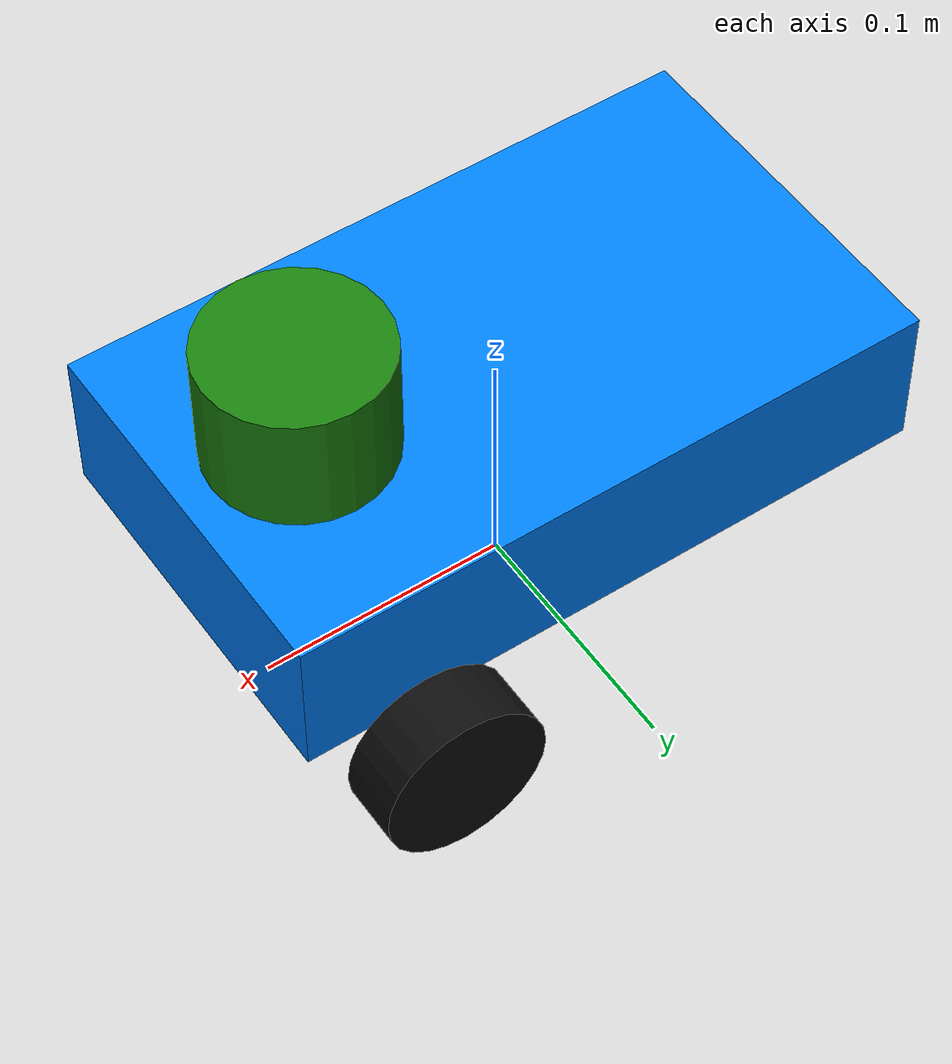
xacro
<?xml version="1.0"?>

<robot name="mobile_robot" xmlns:xacro="http://ros.org/wiki/xacro">
    <xacro:include filename="$(find odometry)/urdf/properties.xacro"/>

    <link name="base_footprint"></link>

    <joint name ="base_joint" type="fixed">
        <parent link="base_footprint"/>
        <child link="base_link"/>
        <origin xyz="0.0 0.0 0.055" rpy="0 0 0"/>
    </joint>

    <link name="base_link">
        <visual>
            <origin xyz="0 0 0.03" rpy="0.0 0.0 0.0" />
            <geometry>
                <box size="0.255 0.15 0.06"/>
            </geometry>
            <material name="blue">
                <color rgba="0.0 0.5 1 1"/>
            </material>
        </visual>
        <collision>
            <origin xyz="0 0 0.03" rpy="0.0 0.0 0.0" />
            <geometry>
                <box size="0.255 0.15 0.06"/>
            </geometry>
        </collision>
        <inertial>
            <mass value="1"/>
            <inertia ixx="0.008" ixy="0.0" ixz="0.0" iyy="0.02136" iyz="0.0" izz="0.0215"/>
        </inertial>
    </link>

    <joint name="caster_back_joint" type="fixed">
        <parent link="base_link"/>
        <child link="caster_back_link"/>
        <origin xyz="-0.08 0 0" rpy="0 0 0"/>
    </joint>

    <link name="caster_back_link">
        <visual name="caster">
            <origin xyz="0.0 0 -0.0275"/>
            <geometry>
                <sphere radius="0.0275"/>
            </geometry>
        </visual>
        <collision>
          <origin xyz="0 0 -0.0275" />
          <geometry>
            <sphere radius="0.0275"/>
          </geometry>
        </collision>

        <inertial>
          <origin xyz="0 0 0" />
          <mass value="0.005" />
          <inertia ixx="0.001" ixy="0.0" ixz="0.0"
                   iyy="0.001" iyz="0.0"
                   izz="0.001" />
        </inertial>
    </link>

    <joint name="joint_right_wheel" type="continuous">
        <parent link="base_link"/>
        <child link="right_wheel"/>
        <origin xyz="0.08 -0.0875 -0.0225" rpy="-1.570795 0 0"/>
        <axis xyz="0.0 0 1"/>
    </joint>

    <link name="right_wheel">
        <visual>
            <geometry>
                <cylinder radius="0.0325" length="0.025"/>
            </geometry>
            <material name="black">
                <color rgba="0.05 0.05 0.05 1"/>
            </material>
        </visual>
        <collision>
            <geometry>
                <cylinder radius="0.0325" length="0.025"/>
            </geometry>
        </collision>
        <inertial>
            <origin xyz="0 0 0" rpy="0 0 0"/>
            <mass value="0.3"/>
            <inertia ixx="0.00145" ixy="0.0" ixz="0.0" iyy="0.00145" iyz="0.0" izz="0.0025"/>
        </inertial>
    </link>

    <joint name="joint_left_wheel" type="continuous">
        <parent link="base_link"/>
        <child link="left_wheel"/>
        <origin xyz="0.08 0.0875 -0.0225" rpy="-1.570795 0 0"/>
        <axis xyz="0.0 0 1"/>
    </joint>

    <link name="left_wheel">
        <visual>
            <geometry>
                <cylinder radius="0.0325" length="0.025"/>
            </geometry>
            <material name="black">
                <color rgba="0.05 0.05 0.05 1"/>
            </material>
        </visual>
        <collision>
            <geometry>
                <cylinder radius="0.0325" length="0.025"/>
            </geometry>
        </collision>
        <inertial>
            <origin xyz="0 0 0" rpy="0 0 0"/>
            <mass value="0.3"/>
            <inertia ixx="0.00145" ixy="0.0" ixz="0.0" iyy="0.00145" iyz="0.0" izz="0.0025"/>
        </inertial>
    </link>
    <joint name="joint_laser" type="fixed">
        <parent link="base_link"/>
        <child link="laser"/>
        <origin xyz="0.08 0 0.085" rpy="0 0 -3.1415"/>

    </joint>
    <link name="laser">
        <visual>
            <origin xyz="0 0 0.0" rpy="0 0 0"/>
            <geometry>
                <cylinder radius="0.035" length="0.05"/>
            </geometry>
            <material name="orange">
                <color rgba="0.1 0.5 0.05 1"/>
            </material>
        </visual>
        <collision>
            <geometry>
                <cylinder radius="0.035" length="0.05"/>
            </geometry>
        </collision>
    </link>

</robot>
